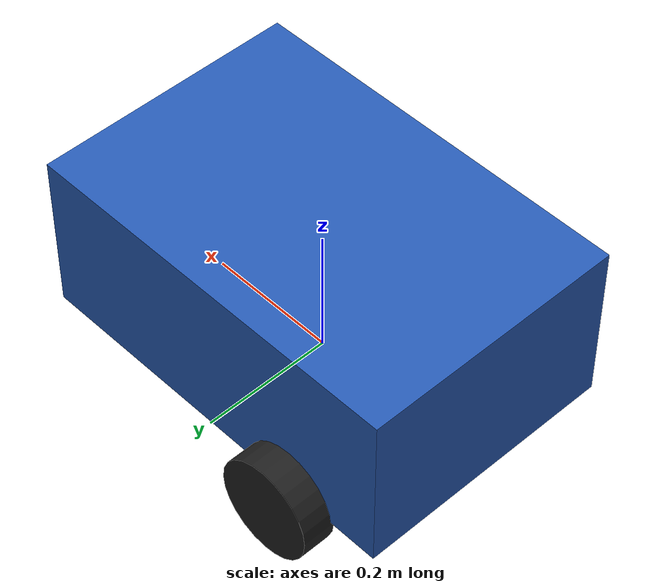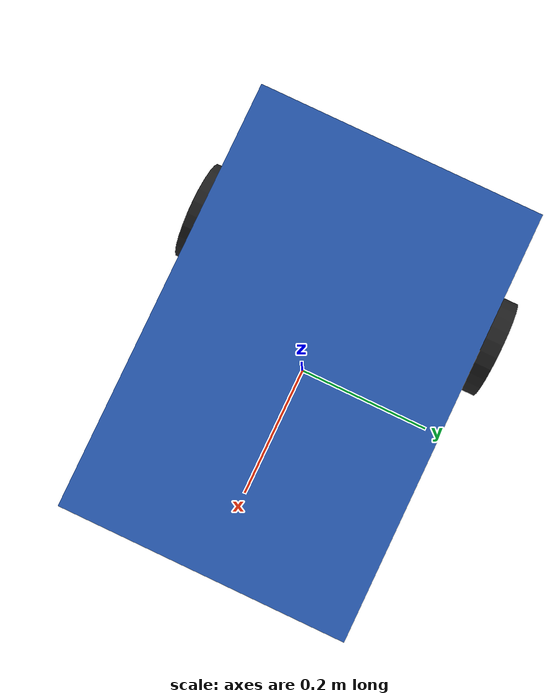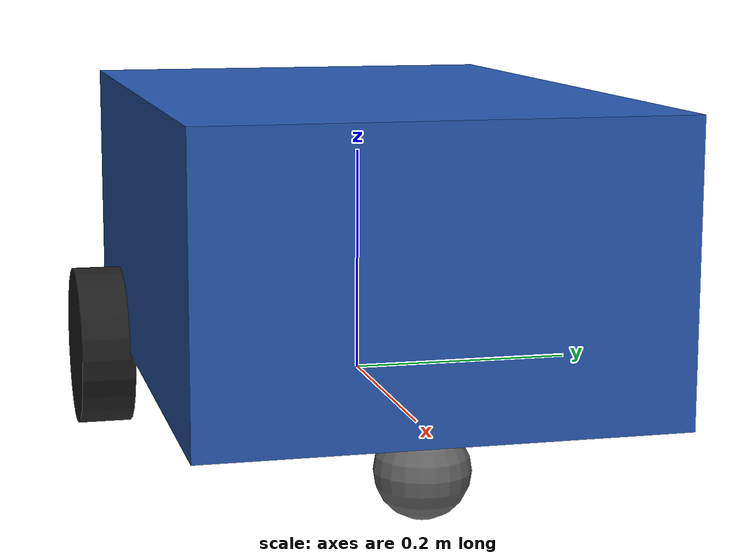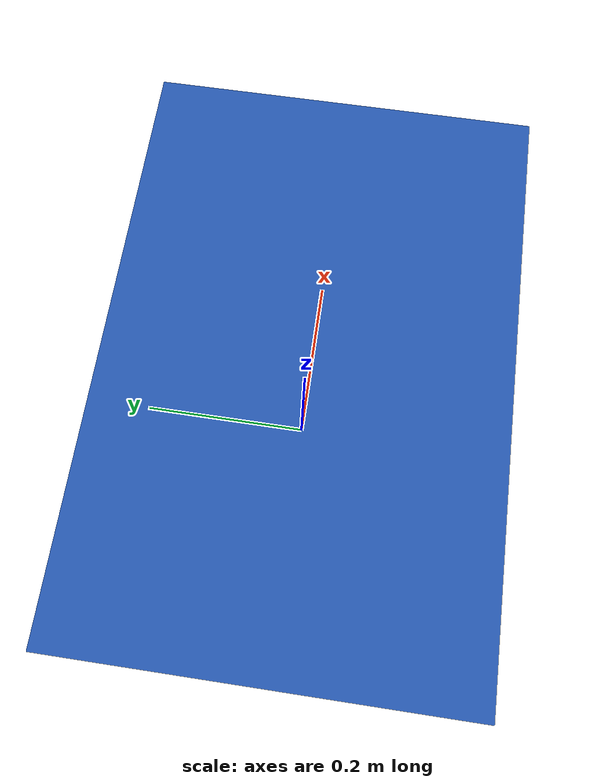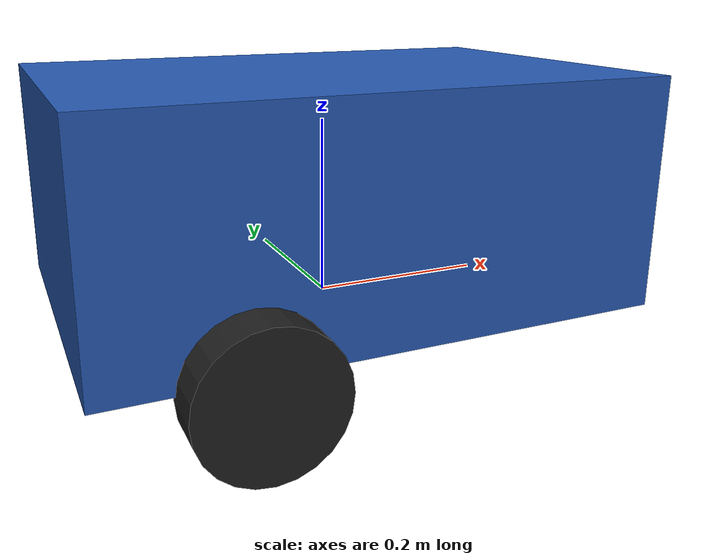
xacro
<?xml version="1.0"?>
<robot xmlns:xacro="http://www.ros.org/wiki/xacro" name="physical_ai_amr">
  <!-- Chassis: 0.6 m (x) x 0.4 m (y) x 0.25 m (z) -->
  <xacro:property name="chassis_length" value="0.6"/>
  <xacro:property name="chassis_width" value="0.4"/>
  <xacro:property name="chassis_height" value="0.25"/>
  <xacro:property name="chassis_mass" value="8.0"/>

  <xacro:property name="wheel_radius" value="0.075"/>
  <xacro:property name="wheel_width" value="0.05"/>
  <xacro:property name="wheel_mass" value="0.5"/>
  <xacro:property name="wheel_y" value="0.22"/>
  <xacro:property name="wheel_x" value="-0.15"/>

  <xacro:property name="caster_radius" value="0.04"/>
  <xacro:property name="caster_mass" value="0.2"/>
  <xacro:property name="caster_x" value="0.22"/>

  <xacro:macro name="box_inertia" params="m x y z">
    <inertial>
      <mass value="${m}"/>
      <inertia
        ixx="${m / 12.0 * (y*y + z*z)}" ixy="0.0" ixz="0.0"
        iyy="${m / 12.0 * (x*x + z*z)}" iyz="0.0"
        izz="${m / 12.0 * (x*x + y*y)}"/>
    </inertial>
  </xacro:macro>

  <xacro:macro name="cylinder_inertia_y" params="m r h">
    <!-- URDF cylinder axis is Z; wheels are rotated to Y with rpy="1.5708 0 0". -->
    <inertial>
      <mass value="${m}"/>
      <inertia
        ixx="${(1.0 / 12.0) * m * (3*r*r + h*h)}" ixy="0.0" ixz="0.0"
        iyy="${0.5 * m * r*r}" iyz="0.0"
        izz="${(1.0 / 12.0) * m * (3*r*r + h*h)}"/>
    </inertial>
  </xacro:macro>

  <xacro:macro name="sphere_inertia" params="m r">
    <inertial>
      <mass value="${m}"/>
      <inertia
        ixx="${0.4 * m * r*r}" ixy="0.0" ixz="0.0"
        iyy="${0.4 * m * r*r}" iyz="0.0"
        izz="${0.4 * m * r*r}"/>
    </inertial>
  </xacro:macro>

  <link name="base_link">
    <visual>
      <origin xyz="0 0 0.13" rpy="0 0 0"/>
      <geometry>
        <box size="${chassis_length} ${chassis_width} ${chassis_height}"/>
      </geometry>
      <material name="chassis_color">
        <color rgba="0.15 0.35 0.7 1.0"/>
      </material>
    </visual>
    <collision>
      <origin xyz="0 0 0.13" rpy="0 0 0"/>
      <geometry>
        <box size="${chassis_length} ${chassis_width} ${chassis_height}"/>
      </geometry>
    </collision>
    <xacro:box_inertia m="${chassis_mass}" x="${chassis_length}" y="${chassis_width}" z="${chassis_height}"/>
  </link>

  <xacro:macro name="drive_wheel" params="prefix y">
    <link name="${prefix}_wheel">
      <visual>
        <origin xyz="0 0 0" rpy="1.5708 0 0"/>
        <geometry>
          <cylinder radius="${wheel_radius}" length="${wheel_width}"/>
        </geometry>
        <material name="${prefix}_wheel_color">
          <color rgba="0.12 0.12 0.12 1.0"/>
        </material>
      </visual>
      <collision>
        <origin xyz="0 0 0" rpy="1.5708 0 0"/>
        <geometry>
          <cylinder radius="${wheel_radius}" length="${wheel_width}"/>
        </geometry>
      </collision>
      <xacro:cylinder_inertia_y m="${wheel_mass}" r="${wheel_radius}" h="${wheel_width}"/>
    </link>

    <joint name="${prefix}_wheel_joint" type="continuous">
      <parent link="base_link"/>
      <child link="${prefix}_wheel"/>
      <origin xyz="${wheel_x} ${y} 0" rpy="0 0 0"/>
      <axis xyz="0 1 0"/>
    </joint>
  </xacro:macro>

  <xacro:drive_wheel prefix="left" y="${wheel_y}"/>
  <xacro:drive_wheel prefix="right" y="${-wheel_y}"/>

  <link name="caster">
    <visual>
      <origin xyz="0 0 0" rpy="0 0 0"/>
      <geometry>
        <sphere radius="${caster_radius}"/>
      </geometry>
      <material name="caster_color">
        <color rgba="0.4 0.4 0.4 1.0"/>
      </material>
    </visual>
    <collision>
      <origin xyz="0 0 0" rpy="0 0 0"/>
      <geometry>
        <sphere radius="${caster_radius}"/>
      </geometry>
    </collision>
    <xacro:sphere_inertia m="${caster_mass}" r="${caster_radius}"/>
  </link>

  <joint name="caster_joint" type="fixed">
    <parent link="base_link"/>
    <child link="caster"/>
    <origin xyz="${caster_x} 0 ${-(wheel_radius - caster_radius)}" rpy="0 0 0"/>
  </joint>

  <!-- Gazebo Harmonic friction lives on collision/surface, not on the link. -->
  <gazebo reference="caster">
    <collision>
      <surface>
        <friction>
          <ode>
            <mu>0.01</mu>
            <mu2>0.01</mu2>
          </ode>
        </friction>
      </surface>
    </collision>
  </gazebo>
  <gazebo reference="left_wheel">
    <collision>
      <surface>
        <friction>
          <ode>
            <mu>1.0</mu>
            <mu2>1.0</mu2>
          </ode>
        </friction>
      </surface>
    </collision>
  </gazebo>
  <gazebo reference="right_wheel">
    <collision>
      <surface>
        <friction>
          <ode>
            <mu>1.0</mu>
            <mu2>1.0</mu2>
          </ode>
        </friction>
      </surface>
    </collision>
  </gazebo>

  <!-- Gazebo Harmonic (gz-sim) DiffDrive — not Gazebo Classic. -->
  <gazebo>
    <plugin filename="gz-sim-diff-drive-system" name="gz::sim::systems::DiffDrive">
      <left_joint>left_wheel_joint</left_joint>
      <right_joint>right_wheel_joint</right_joint>
      <wheel_separation>${wheel_y * 2.0}</wheel_separation>
      <wheel_radius>${wheel_radius}</wheel_radius>
      <odom_publish_frequency>50</odom_publish_frequency>
      <topic>/cmd_vel</topic>
      <odom_topic>/odom</odom_topic>
      <tf_topic>/tf</tf_topic>
      <frame_id>odom</frame_id>
      <child_frame_id>base_link</child_frame_id>
    </plugin>
    <!-- Wheel joint angles, so robot_state_publisher can TF the wheel links. -->
    <plugin filename="gz-sim-joint-state-publisher-system" name="gz::sim::systems::JointStatePublisher">
      <joint_name>left_wheel_joint</joint_name>
      <joint_name>right_wheel_joint</joint_name>
    </plugin>
  </gazebo>
</robot>
